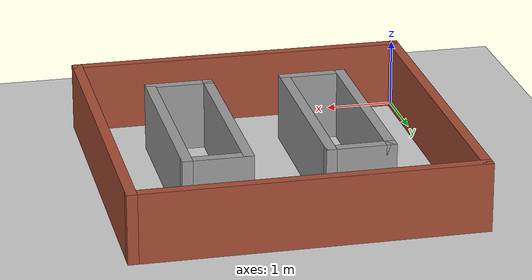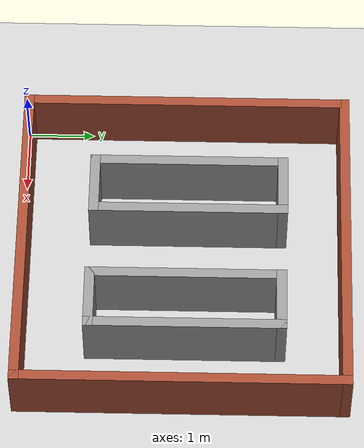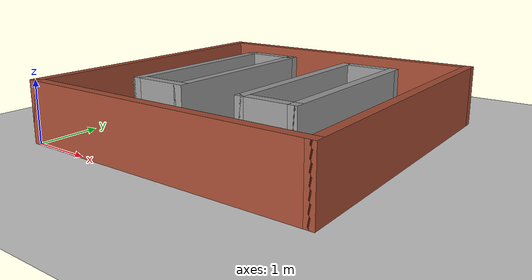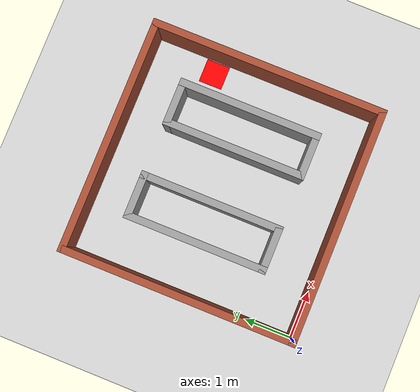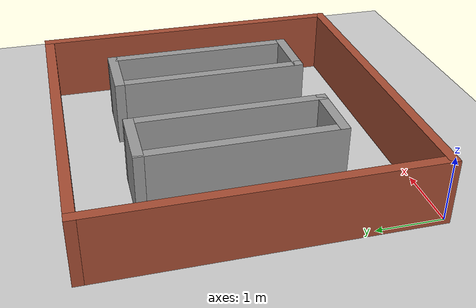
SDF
<sdf version="1.6">
 <world name="default">
  <light name="sun" type="directional">
   <pose>0 0 10 0 -0 0</pose>
   <diffuse>0.8 0.8 0.8 1</diffuse>
   <specular>0.2 0.2 0.2 1</specular>
   <attenuation>
    <range>1000</range>
    <constant>0.9</constant>
    <linear>0.01</linear>
    <quadratic>0.001</quadratic>
   </attenuation>
   <direction>-0.5 0.1 -0.9</direction>
  </light>
  <model name="ground_plane">
   <static>1</static>
   <link name="link">
    <collision name="collision">
     <geometry><plane><normal>0 0 1</normal><size>100 100</size></plane></geometry>
     <surface>
      <contact><collide_bitmask>65535</collide_bitmask></contact>
      <friction><ode><mu>100</mu><mu2>50</mu2></ode></friction>
     </surface>
    </collision>
    <visual name="visual">
     <cast_shadows>0</cast_shadows>
     <geometry><plane><normal>0 0 1</normal><size>100 100</size></plane></geometry>
     <material>
      <script><uri>file://media/materials/scripts/gazebo.material</uri><name>Gazebo/Grey</name></script>
     </material>
    </visual>
   </link>
  </model>
  <gravity>0 0 -9.8</gravity>
  <magnetic_field>6e-06 2.3e-05 -4.2e-05</magnetic_field>
  <atmosphere type="adiabatic"/>
  <physics name="default_physics" default="0" type="ode">
   <max_step_size>0.001</max_step_size>
   <real_time_factor>1</real_time_factor>
   <real_time_update_rate>1000</real_time_update_rate>
  </physics>
  <scene><ambient>0.4 0.4 0.4 1</ambient><background>0.7 0.7 0.7 1</background><shadows>1</shadows></scene>
  <audio><device>default</device></audio>
  <spherical_coordinates>
   <surface_model>EARTH_WGS84</surface_model>
   <latitude_deg>0</latitude_deg>
   <longitude_deg>0</longitude_deg>
   <elevation>0</elevation>
   <heading_deg>0</heading_deg>
  </spherical_coordinates>
  <model name="Untitled">
   <pose>2.41654 2.45863 -0 0 -0 0</pose>
   <link name="Wall_0">
    <collision name="Wall_0_Collision">
     <geometry><box><size>5 0.15 1</size></box></geometry>
     <pose>0 0 0.5 0 -0 0</pose>
    </collision>
    <visual name="Wall_0_Visual">
     <pose>0 0 0.5 0 -0 0</pose>
     <geometry><box><size>5 0.15 1</size></box></geometry>
     <material>
      <script><uri>file://media/materials/scripts/gazebo.material</uri><name>Gazebo/Bricks</name></script>
      <ambient>1 1 1 1</ambient>
     </material>
     <meta><layer>0</layer></meta>
    </visual>
    <pose>-2.425 -0 0 0 -0 -1.5708</pose>
   </link>
   <link name="Wall_1">
    <collision name="Wall_1_Collision">
     <geometry><box><size>5 0.15 1</size></box></geometry>
     <pose>0 0 0.5 0 -0 0</pose>
    </collision>
    <visual name="Wall_1_Visual">
     <pose>0 0 0.5 0 -0 0</pose>
     <geometry><box><size>5 0.15 1</size></box></geometry>
     <material>
      <script><uri>file://media/materials/scripts/gazebo.material</uri><name>Gazebo/Bricks</name></script>
      <ambient>1 1 1 1</ambient>
     </material>
     <meta><layer>0</layer></meta>
    </visual>
    <pose>-0 -2.425 0 0 -0 0</pose>
   </link>
   <link name="Wall_2">
    <collision name="Wall_2_Collision">
     <geometry><box><size>5 0.15 1</size></box></geometry>
     <pose>0 0 0.5 0 -0 0</pose>
    </collision>
    <visual name="Wall_2_Visual">
     <pose>0 0 0.5 0 -0 0</pose>
     <geometry><box><size>5 0.15 1</size></box></geometry>
     <material>
      <script><uri>file://media/materials/scripts/gazebo.material</uri><name>Gazebo/Bricks</name></script>
      <ambient>1 1 1 1</ambient>
     </material>
     <meta><layer>0</layer></meta>
    </visual>
    <pose>2.425 -0 0 0 -0 1.5708</pose>
   </link>
   <link name="Wall_3">
    <collision name="Wall_3_Collision">
     <geometry><box><size>5 0.15 1</size></box></geometry>
     <pose>0 0 0.5 0 -0 0</pose>
    </collision>
    <visual name="Wall_3_Visual">
     <pose>0 0 0.5 0 -0 0</pose>
     <geometry><box><size>5 0.15 1</size></box></geometry>
     <material>
      <script><uri>file://media/materials/scripts/gazebo.material</uri><name>Gazebo/Bricks</name></script>
      <ambient>1 1 1 1</ambient>
     </material>
     <meta><layer>0</layer></meta>
    </visual>
    <pose>-0 2.425 0 0 -0 3.14159</pose>
   </link>
   <static>1</static>
  </model>
  <model name="Untitled2_1">
   <pose>1.50619 2.516 0 0 -0 0</pose>
   <link name="Wall_5">
    <collision name="Wall_5_Collision">
     <geometry><box><size>3 0.15 1</size></box></geometry>
     <pose>0 0 0.5 0 -0 0</pose>
    </collision>
    <visual name="Wall_5_Visual">
     <pose>0 0 0.5 0 -0 0</pose>
     <geometry><box><size>3 0.15 1</size></box></geometry>
     <material>
      <script><uri>file://media/materials/scripts/gazebo.material</uri><name>Gazebo/Grey</name></script>
      <ambient>1 1 1 1</ambient>
     </material>
     <meta><layer>0</layer></meta>
    </visual>
    <pose>-0.425 0 0 0 -0 -1.5708</pose>
   </link>
   <link name="Wall_6">
    <collision name="Wall_6_Collision">
     <geometry><box><size>1 0.15 1</size></box></geometry>
     <pose>0 0 0.5 0 -0 0</pose>
    </collision>
    <visual name="Wall_6_Visual">
     <pose>0 0 0.5 0 -0 0</pose>
     <geometry><box><size>1 0.15 1</size></box></geometry>
     <material>
      <script><uri>file://media/materials/scripts/gazebo.material</uri><name>Gazebo/Grey</name></script>
      <ambient>1 1 1 1</ambient>
     </material>
     <meta><layer>0</layer></meta>
    </visual>
    <pose>0 -1.425 0 0 -0 0</pose>
   </link>
   <link name="Wall_7">
    <collision name="Wall_7_Collision">
     <geometry><box><size>3 0.15 1</size></box></geometry>
     <pose>0 0 0.5 0 -0 0</pose>
    </collision>
    <visual name="Wall_7_Visual">
     <pose>0 0 0.5 0 -0 0</pose>
     <geometry><box><size>3 0.15 1</size></box></geometry>
     <material>
      <script><uri>file://media/materials/scripts/gazebo.material</uri><name>Gazebo/Grey</name></script>
      <ambient>1 1 1 1</ambient>
     </material>
     <meta><layer>0</layer></meta>
    </visual>
    <pose>0.425 0 0 0 -0 1.5708</pose>
   </link>
   <link name="Wall_8">
    <collision name="Wall_8_Collision">
     <geometry><box><size>1 0.15 1</size></box></geometry>
     <pose>0 0 0.5 0 -0 0</pose>
    </collision>
    <visual name="Wall_8_Visual">
     <pose>0 0 0.5 0 -0 0</pose>
     <geometry><box><size>1 0.15 1</size></box></geometry>
     <material>
      <script><uri>file://media/materials/scripts/gazebo.material</uri><name>Gazebo/Grey</name></script>
      <ambient>1 1 1 1</ambient>
     </material>
     <meta><layer>0</layer></meta>
    </visual>
    <pose>0 1.425 0 0 -0 3.14159</pose>
   </link>
   <static>1</static>
  </model>
  <model name="Untitled2">
   <pose>3.5 2.5 0 0 -0 0</pose>
   <link name="Wall_5">
    <collision name="Wall_5_Collision">
     <geometry><box><size>3 0.15 1</size></box></geometry>
     <pose>0 0 0.5 0 -0 0</pose>
    </collision>
    <visual name="Wall_5_Visual">
     <pose>0 0 0.5 0 -0 0</pose>
     <geometry><box><size>3 0.15 1</size></box></geometry>
     <material>
      <script><uri>file://media/materials/scripts/gazebo.material</uri><name>Gazebo/Grey</name></script>
      <ambient>1 1 1 1</ambient>
     </material>
     <meta><layer>0</layer></meta>
    </visual>
    <pose>-0.425 0 0 0 -0 -1.5708</pose>
   </link>
   <link name="Wall_6">
    <collision name="Wall_6_Collision">
     <geometry><box><size>1 0.15 1</size></box></geometry>
     <pose>0 0 0.5 0 -0 0</pose>
    </collision>
    <visual name="Wall_6_Visual">
     <pose>0 0 0.5 0 -0 0</pose>
     <geometry><box><size>1 0.15 1</size></box></geometry>
     <material>
      <script><uri>file://media/materials/scripts/gazebo.material</uri><name>Gazebo/Grey</name></script>
      <ambient>1 1 1 1</ambient>
     </material>
     <meta><layer>0</layer></meta>
    </visual>
    <pose>0 -1.425 0 0 -0 0</pose>
   </link>
   <link name="Wall_7">
    <collision name="Wall_7_Collision">
     <geometry><box><size>3 0.15 1</size></box></geometry>
     <pose>0 0 0.5 0 -0 0</pose>
    </collision>
    <visual name="Wall_7_Visual">
     <pose>0 0 0.5 0 -0 0</pose>
     <geometry><box><size>3 0.15 1</size></box></geometry>
     <material>
      <script><uri>file://media/materials/scripts/gazebo.material</uri><name>Gazebo/Grey</name></script>
      <ambient>1 1 1 1</ambient>
     </material>
     <meta><layer>0</layer></meta>
    </visual>
    <pose>0.425 0 0 0 -0 1.5708</pose>
   </link>
   <link name="Wall_8">
    <collision name="Wall_8_Collision">
     <geometry><box><size>1 0.15 1</size></box></geometry>
     <pose>0 0 0.5 0 -0 0</pose>
    </collision>
    <visual name="Wall_8_Visual">
     <pose>0 0 0.5 0 -0 0</pose>
     <geometry><box><size>1 0.15 1</size></box></geometry>
     <material>
      <script><uri>file://media/materials/scripts/gazebo.material</uri><name>Gazebo/Grey</name></script>
      <ambient>1 1 1 1</ambient>
     </material>
     <meta><layer>0</layer></meta>
    </visual>
    <pose>0 1.425 0 0 -0 3.14159</pose>
   </link>
   <static>1</static>
  </model>
  <model name="goal">
   <link name="goal_box">
    <visual name="goal_box">
     <pose>0 0 0.0005 0 -0 0</pose>
     <geometry><box><size>0.5 0.5 0.001</size></box></geometry>
     <material>
      <script><uri>file://media/materials/scripts/gazebo.material</uri><name>Gazebo/Grey</name></script>
      <ambient>1 0 0 1</ambient>
     </material>
    </visual>
   </link>
   <static>1</static>
   <pose>4.5 3.5 0 0 -0 0</pose>
  </model>
 </world>
</sdf>
